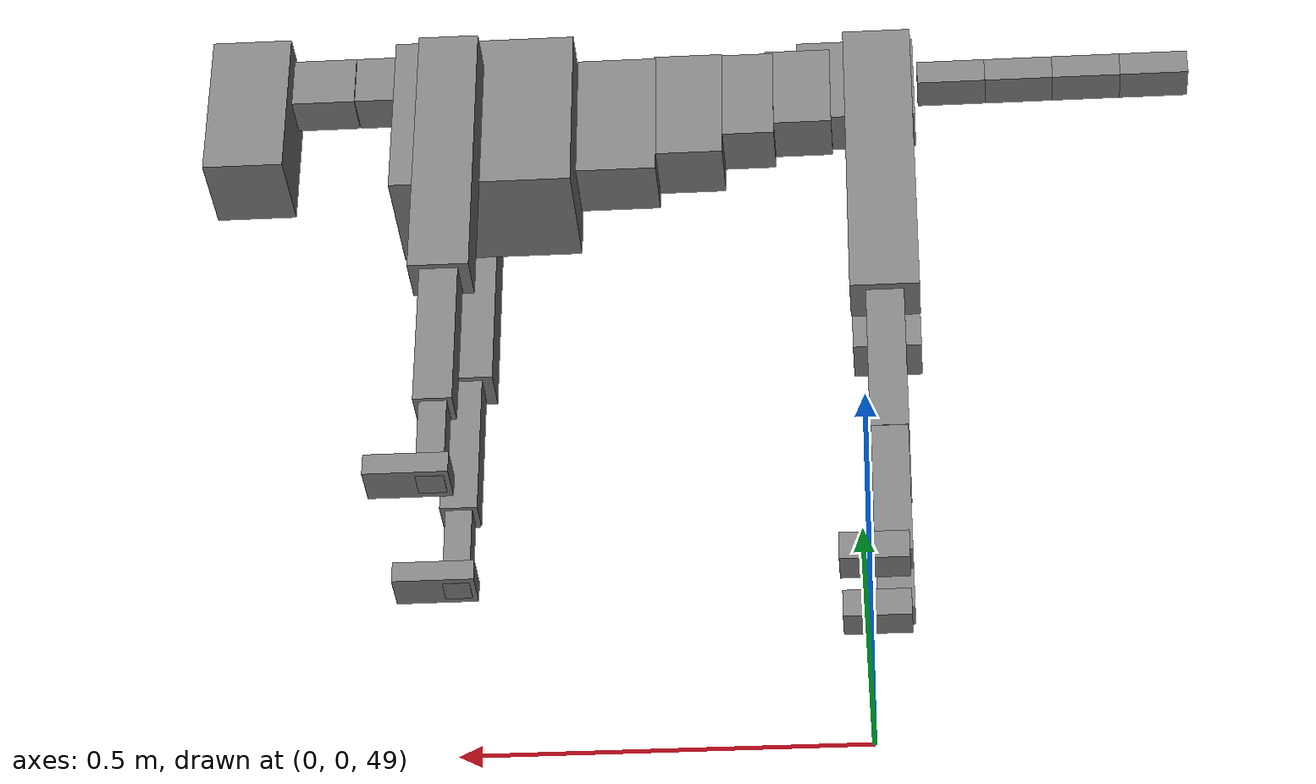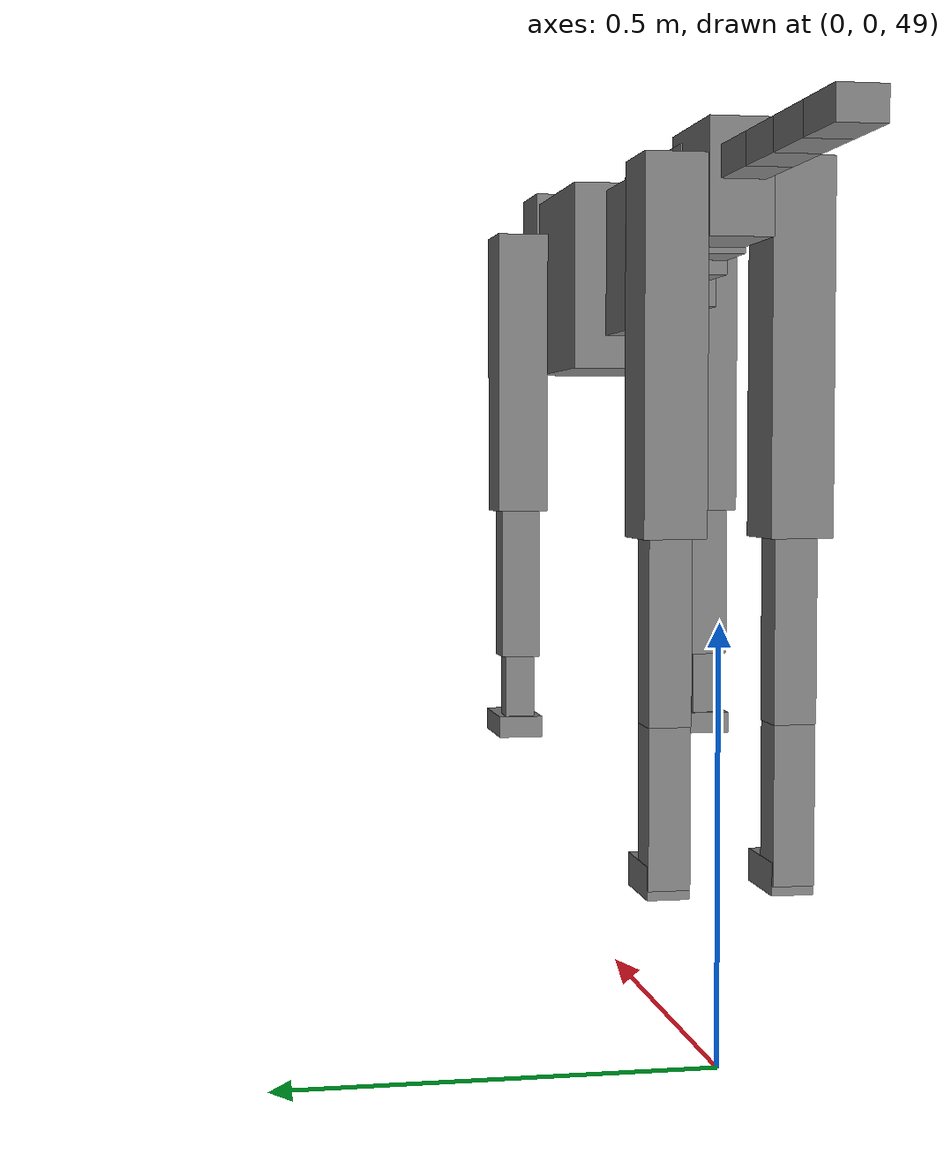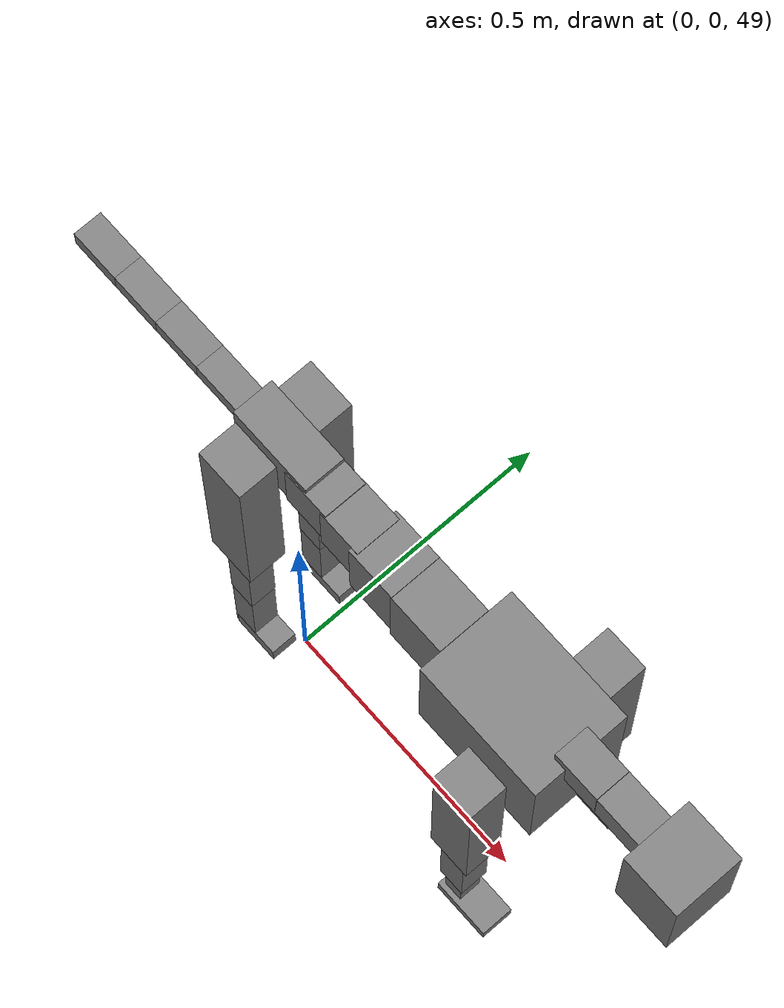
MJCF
<mujoco model="dog">

    <default>
        <joint armature="0.02" stiffness="1" damping="0.2" limited="true"/>
        <geom condim="3" friction="1 0.05 0.05" margin="0.01"/>
        <motor ctrllimited="true" ctrlrange="-1.0 1.0" forcelimited="true" gear="50"/>
    </default>

    <compiler inertiafromgeom="true" angle="radian"/>

    <option timestep="0.016" iterations="50" tolerance="1e-10" solver="Newton" jacobian="dense" cone="pyramidal"/>

    <size nconmax="20000" njmax="60000" nstack="5000000"/>
    <visual>
        <map force="0.1" zfar="30"/>
        <rgba haze="0.15 0.25 0.35 1"/>
        <quality shadowsize="2048"/>
        <global offwidth="800" offheight="800"/>
    </visual>

    <asset>
        <texture type="skybox" builtin="gradient" rgb1="0.3 0.5 0.7" rgb2="0 0 0" width="512" height="512"/>
        <texture name="texplane" type="2d" builtin="checker" rgb1=".2 .3 .4" rgb2=".1 0.15 0.2" width="512" height="512"
                 mark="cross" markrgb=".8 .8 .8"/>
        <texture name="texgeom" type="cube" builtin="flat" mark="cross" width="127" height="1278" rgb1="0.8 0.6 0.4"
                 rgb2="0.8 0.6 0.4" markrgb="1 1 1" random="0.01"/>

        <material name="matplane" reflectance="0.3" texture="texplane" texrepeat="1 1" texuniform="true"/>
        <material name="matgeom" texture="texgeom" texuniform="true" rgba="0.8 0.6 .4 1"/>
    </asset>

    <worldbody>
        <geom name="floor" pos="0 0 0" size="0 0 .25" type="plane" material="matplane" condim="3"/>

        <light directional="false" diffuse=".2 .2 .2" specular="0 0 0" pos="0 0 5" dir="0 0 -1" castshadow="false"/>
        <light mode="targetbodycom" target="torso" directional="false" diffuse=".8 .8 .8" specular="0.3 0.3 0.3"
               pos="0 0 4.0" dir="0 0 -1"/>

        <body name="root" pos="0 0 50">
            <freejoint name="root_1"/>
            <geom type="box" pos="0 0 -0.02" size="0.0774  0.0358  0.063" density="2030"/>

            <body name="spine1" pos="0.054 0 0">
                <joint name="spine1_y" axis="0 1 0" range="0 0.7" limited="true"/>
                <geom type="box" pos="0.02375 0 -0.03" size="0.04375  0.0375  0.05985" density="2030"/>

                <body name="spine2" pos="0.0612 0 0">
                    <joint name="spine2_y" axis="0 1 0" range="-0.15 0.15" limited="true"/>
                    <geom type="box" pos="0.03555  0  -0.04" size="0.04055  0.039  0.06615" density="2030"/>

                    <body name="spine3" pos="0.0730 0 0">
                        <joint name="spine3_y" axis="0 1 0" range="-0.15 0.15" limited="true"/>
                        <geom type="box" pos="0.03555  0  -0.057" size="0.04555  0.0445  0.081" density="2030"/>

                        <body name="spine4" pos="0.0780 0 0">
                            <joint name="spine4_y" axis="0 1 0" range="-0.15 0.15" limited="true"/>
                            <geom type="box" pos="0.05265  0  -0.07" size="0.05265  0.045  0.09135" density="2030"/>

                            <body name="torso" pos="0.1082 0 0">
                                <joint name="torso_y" axis="0 1 0" range="-0.15 0.15" limited="true"/>
                                <geom type="box" pos="0.11925  0  -0.085" size="0.11925  0.085  0.11745"
                                      density="2030"/>

                                <body name="neck1" pos="0.2160  0   0.0180">
                                    <joint name="neck1_y" axis="0 1 0" range="-1.2  -1" limited="true"/>
                                    <geom type="box" pos="0.0423  0  0" size="0.0423  0.03  0.036" density="2325"/>

                                    <body name="neck2" pos="0.0853  0  0">
                                        <joint name="neck2_y" axis="0 1 0" range="0.1  0" limited="true"/>
                                        <geom type="box" pos="0.0423  0  0" size="0.0423  0.03  0.036" density="2325"/>

                                        <body name="head" pos="0.0853  0  0">
                                            <joint name="head_y" axis="0 1 0" range="-0.3  -0.2" limited="true"/>
                                            <geom type="box" pos="0.0531  0  -0.055" size="0.0531  0.06  0.1044"
                                                  density="4030"/>

                                        </body>
                                    </body>
                                </body>

                                <body name="front_shoulder" pos="0.156  0   -0.0480">
                                    <joint name="front_shoulder_y" axis="0 1 0" range="-1 1.5" limited="true"/>
                                    <geom type="box" pos="0 0.13 -0.1565" size="0.0389  0.0332  0.1831" density="1158"/>
                                    <geom type="box" pos="0 -0.13 -0.1565" size="0.0389  0.0332  0.1831"
                                          density="1158"/>

                                    <body name="front_elbow" pos="0  0  -0.3130">
                                        <joint name="front_elbow_y" axis="0 1 0" range="-2 0" limited="true"/>
                                        <geom type="box" pos="0 0.13 -0.1112" size="0.0245  0.0251  0.1112"
                                              density="1081"/>
                                        <geom type="box" pos="0 -0.13 -0.1112" size="0.0245  0.0251  0.1112"
                                              density="1081"/>

                                        <body name="front_wrist" pos="0  0  -0.2223">
                                            <joint name="front_wrist_y" axis="0 1 0" range="-0.2 0" limited="true"/>
                                            <geom type="box" pos="0 0.13 -0.0480" size="0.0175  0.0195  0.0612"
                                                  density="1664"/>
                                            <geom type="box" pos="0 -0.13 -0.0480" size="0.0175  0.0195  0.0612"
                                                  density="1664"/>

                                            <body name="front_finger_end" pos="0  0  -0.0960">
                                                <joint name="front_finger_y" axis="0 1 0" range="-0.4 1"
                                                       limited="true"/>
                                                <geom type="box" pos="0.0287  0.13  0.0011"
                                                      size="0.0527  0.0287  0.0139" density="1515"/>
                                                <geom type="box" pos="0.0287  -0.13  0.0011"
                                                      size="0.0527  0.0287  0.0139" density="1515"/>

                                            </body>

                                        </body>
                                    </body>
                                </body>

                            </body>
                        </body>
                    </body>
                </body>
            </body>

            <body name="back_hip" pos="-0.03 0 -0.018">
                <joint name="back_hip_y" axis="0 1 0" range="-1.5 0.3" limited="true"/>
                <geom type="box" pos="0 0.07 -0.1815" size="0.0442  0.0347  0.2043" density="1154"/>
                <geom type="box" pos="0 -0.07 -0.1815" size="0.0442  0.0347  0.2043" density="1154"/>

                <body name="back_knee" pos="0  0  -0.3631">
                    <joint name="back_knee_y" axis="0 1 0" range="0 2.8" limited="true"/>
                    <geom type="box" pos="0 0.07 -0.1054" size="0.0242  0.0238  0.1209" density="1227"/>
                    <geom type="box" pos="0 -0.07 -0.1054" size="0.0242  0.0238  0.1209" density="1227"/>

                    <body name="back_ankle" pos="0  0  -0.2107">
                        <joint name="back_ankle_y" axis="0 1 0" range="-2.2 0" limited="true"/>
                        <geom type="box" pos="0 0.07 -0.0911" size="0.0232  0.0232  0.1024" density="1284"/>
                        <geom type="box" pos="0 -0.07 -0.0911" size="0.0232  0.0232  0.1024" density="1284"/>

                        <body name="back_toe_end" pos="0  0  -0.1822">
                            <joint name="back_toe_y" axis="0 1 0" range="-0.4 1" limited="true"/>
                            <geom type="box" pos="0.0234  0.07  -0.0035" size="0.0429  0.0234  0.0185" density="1515"/>
                            <geom type="box" pos="0.0234  -0.07  -0.0035" size="0.0429  0.0234  0.0185" density="1515"/>

                        </body>
                    </body>
                </body>
            </body>

            <body name="tail1" pos="-0.074 0 -0.006">
                <joint name="tail1_y" axis="0 1 0" range="-0.2 0.2" limited="true"/>
                <geom type="box" pos="-0.0536  0  0" size="0.045  0.025  0.0175" density="1587"/>

                <body name="tail2" pos="-0.09 0 0">
                    <joint name="tail2_y" axis="0 1 0" range="-0.2 0.2" limited="true"/>
                    <geom type="box" pos="-0.0536  0  0" size="0.045  0.025  0.0175" density="1587"/>

                    <body name="tail3" pos="-0.09 0 0">
                        <joint name="tail3_y" axis="0 1 0" range="-0.2 0.2" limited="true"/>
                        <geom type="box" pos="-0.0536  0  0" size="0.045  0.025  0.0175" density="1587"/>

                        <body name="tail4" pos="-0.09 0 0">
                            <joint name="tail4_y" axis="0 1 0" range="-0.2 0.2" limited="true"/>
                            <geom type="box" pos="-0.0536  0  0" size="0.045  0.025  0.0175" density="1587"/>

                        </body>
                    </body>
                </body>
            </body>
        </body>
    </worldbody>

    <actuator>
        <motor joint="spine1_y" forcerange="-150 150     "/>
        <motor joint="spine2_y" forcerange="-150 150     "/>
        <motor joint="spine3_y" forcerange="-150 150     "/>
        <motor joint="spine4_y" forcerange="-150 150     "/>
        <motor joint="torso_y" forcerange="-150 150     "/>
        <motor joint="neck1_y" forcerange="-100 100       "/>
        <motor joint="neck2_y" forcerange="-100 100       "/>
        <motor joint="head_y" forcerange="-150 150       "/>
        <motor joint="front_shoulder_y" forcerange="-151.28 170.18"/>
        <motor joint="front_elbow_y" forcerange="-116.23 166.23"/>
        <motor joint="front_wrist_y" forcerange="-71.46 84.50"/>
        <motor joint="front_finger_y" forcerange="-88.56 24.77"/>
        <motor joint="back_hip_y" forcerange="-392.41 269.93"/>
        <motor joint="back_knee_y" forcerange="-268.68 277.64"/>
        <motor joint="back_angle_y" forcerange="-64.21 207.59"/>
        <motor joint="back_toe_y" forcerange="-57.03 50.25"/>
        <motor joint="tail1_y" forcerange="-50 50     "/>
        <motor joint="tail2_y" forcerange="-50 50     "/>
        <motor joint="tail3_y" forcerange="-50 50     "/>
        <motor joint="tail4_y" forcerange="-50 50     "/>
    </actuator>
</mujoco>
